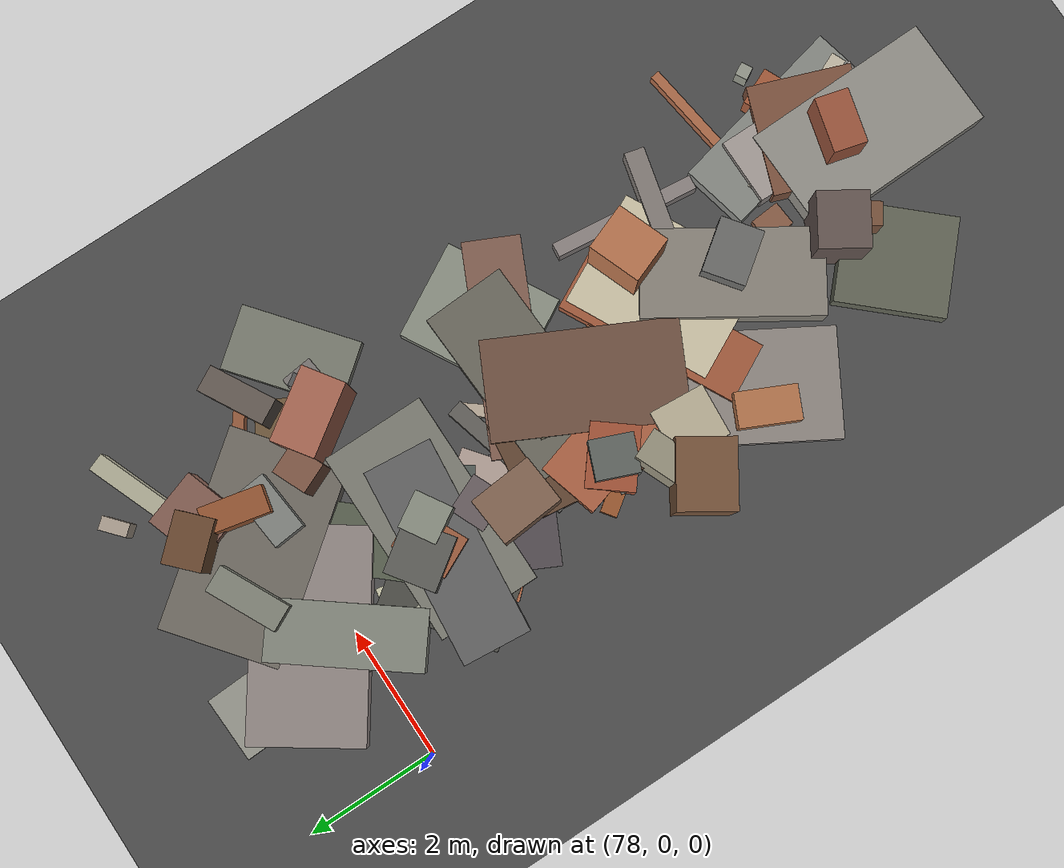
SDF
<sdf version="1.6">
 <world name="navitas_arena">
  <model name="ground_plane">
   <static>true</static>
   <link name="link">
    <collision name="collision">
     <geometry><plane><normal>0 0 1</normal><size>400 400</size></plane></geometry>
     <surface><friction><ode><mu>0.800</mu><mu2>0.800</mu2></ode></friction></surface>
    </collision>
    <visual name="visual">
     <cast_shadows>false</cast_shadows>
     <geometry><plane><normal>0 0 1</normal><size>400 400</size></plane></geometry>
     <material>
      <specular>0.04 0.04 0.04 1</specular>
      <script>
       <uri>file://media/materials/scripts/navitas_asphalt.material</uri>
       <name>Navitas/RealArenaAsphalt</name>
      </script>
     </material>
    </visual>
   </link>
  </model>
  <model name="deb_zor_56">
   <static>true</static>
   <pose>83.447 -8.535 0.000 0 0 0</pose>
   <link name="link">
    <collision name="col_0">
     <pose>-0.023 0.417 0.097 0.000 0.000 0.138</pose>
     <geometry><box><size>1.928 0.146 0.194</size></box></geometry>
    </collision>
    <visual name="vis_0">
     <pose>-0.023 0.417 0.097 0.000 0.000 0.138</pose>
     <geometry><box><size>1.928 0.146 0.194</size></box></geometry>
     <material>
      <ambient>0.63 0.39 0.26 1</ambient>
      <diffuse>0.68 0.42 0.29 1</diffuse>
      <specular>0.05 0.05 0.045 1</specular>
     </material>
    </visual>
    <collision name="col_1">
     <pose>0.239 -0.536 0.140 0.000 0.000 2.083</pose>
     <geometry><box><size>0.204 0.184 0.281</size></box></geometry>
    </collision>
    <visual name="vis_1">
     <pose>0.239 -0.536 0.140 0.000 0.000 2.083</pose>
     <geometry><box><size>0.204 0.184 0.281</size></box></geometry>
     <material>
      <ambient>0.55 0.56 0.51 1</ambient>
      <diffuse>0.59 0.60 0.55 1</diffuse>
      <specular>0.05 0.05 0.045 1</specular>
     </material>
    </visual>
    <collision name="col_2">
     <pose>-0.752 -0.512 0.131 0.000 0.000 1.798</pose>
     <geometry><box><size>2.816 1.041 0.261</size></box></geometry>
    </collision>
    <visual name="vis_2">
     <pose>-0.752 -0.512 0.131 0.000 0.000 1.798</pose>
     <geometry><box><size>2.816 1.041 0.261</size></box></geometry>
     <material>
      <ambient>0.49 0.50 0.48 1</ambient>
      <diffuse>0.53 0.54 0.52 1</diffuse>
      <specular>0.05 0.05 0.045 1</specular>
     </material>
    </visual>
    <collision name="col_3">
     <pose>-0.404 -0.680 0.183 0.000 0.000 0.432</pose>
     <geometry><box><size>0.807 0.586 0.366</size></box></geometry>
    </collision>
    <visual name="vis_3">
     <pose>-0.404 -0.680 0.183 0.000 0.000 0.432</pose>
     <geometry><box><size>0.807 0.586 0.366</size></box></geometry>
     <material>
      <ambient>0.60 0.33 0.22 1</ambient>
      <diffuse>0.65 0.36 0.23 1</diffuse>
      <specular>0.05 0.05 0.045 1</specular>
     </material>
    </visual>
    <collision name="col_4">
     <pose>-0.187 -0.570 0.068 0.000 0.000 1.763</pose>
     <geometry><box><size>0.271 0.315 0.135</size></box></geometry>
    </collision>
    <visual name="vis_4">
     <pose>-0.187 -0.570 0.068 0.000 0.000 1.763</pose>
     <geometry><box><size>0.271 0.315 0.135</size></box></geometry>
     <material>
      <ambient>0.46 0.36 0.28 1</ambient>
      <diffuse>0.49 0.38 0.30 1</diffuse>
      <specular>0.05 0.05 0.045 1</specular>
     </material>
    </visual>
   </link>
  </model>
  <model name="deb_zor_82">
   <static>true</static>
   <pose>79.392 -5.430 0.000 0 0 0</pose>
   <link name="link">
    <collision name="col_0">
     <pose>0.533 -0.974 0.094 0.000 0.000 1.044</pose>
     <geometry><box><size>2.958 1.632 0.187</size></box></geometry>
    </collision>
    <visual name="vis_0">
     <pose>0.533 -0.974 0.094 0.000 0.000 1.044</pose>
     <geometry><box><size>2.958 1.632 0.187</size></box></geometry>
     <material>
      <ambient>0.52 0.49 0.47 1</ambient>
      <diffuse>0.56 0.53 0.51 1</diffuse>
      <specular>0.05 0.05 0.045 1</specular>
     </material>
    </visual>
    <collision name="col_1">
     <pose>0.467 -0.253 0.119 0.000 0.000 1.325</pose>
     <geometry><box><size>0.332 0.458 0.238</size></box></geometry>
    </collision>
    <visual name="vis_1">
     <pose>0.467 -0.253 0.119 0.000 0.000 1.325</pose>
     <geometry><box><size>0.332 0.458 0.238</size></box></geometry>
     <material>
      <ambient>0.42 0.29 0.24 1</ambient>
      <diffuse>0.45 0.32 0.25 1</diffuse>
      <specular>0.05 0.05 0.045 1</specular>
     </material>
    </visual>
    <collision name="col_2">
     <pose>0.059 -1.146 0.235 0.000 0.000 2.701</pose>
     <geometry><box><size>0.521 0.916 0.470</size></box></geometry>
    </collision>
    <visual name="vis_2">
     <pose>0.059 -1.146 0.235 0.000 0.000 2.701</pose>
     <geometry><box><size>0.521 0.916 0.470</size></box></geometry>
     <material>
      <ambient>0.66 0.43 0.28 1</ambient>
      <diffuse>0.71 0.46 0.30 1</diffuse>
      <specular>0.05 0.05 0.045 1</specular>
     </material>
    </visual>
    <collision name="col_3">
     <pose>0.770 -0.200 0.067 0.000 0.000 1.558</pose>
     <geometry><box><size>1.090 0.287 0.134</size></box></geometry>
    </collision>
    <visual name="vis_3">
     <pose>0.770 -0.200 0.067 0.000 0.000 1.558</pose>
     <geometry><box><size>1.090 0.287 0.134</size></box></geometry>
     <material>
      <ambient>0.64 0.38 0.29 1</ambient>
      <diffuse>0.69 0.41 0.32 1</diffuse>
      <specular>0.05 0.05 0.045 1</specular>
     </material>
    </visual>
    <collision name="col_4">
     <pose>-0.262 0.188 0.550 0.000 0.000 2.567</pose>
     <geometry><box><size>1.025 0.848 1.101</size></box></geometry>
    </collision>
    <visual name="vis_4">
     <pose>-0.262 0.188 0.550 0.000 0.000 2.567</pose>
     <geometry><box><size>1.025 0.848 1.101</size></box></geometry>
     <material>
      <ambient>0.44 0.30 0.22 1</ambient>
      <diffuse>0.47 0.33 0.23 1</diffuse>
      <specular>0.05 0.05 0.045 1</specular>
     </material>
    </visual>
    <collision name="col_5">
     <pose>0.113 0.449 0.482 0.000 0.000 3.538</pose>
     <geometry><box><size>0.976 0.472 0.964</size></box></geometry>
    </collision>
    <visual name="vis_5">
     <pose>0.113 0.449 0.482 0.000 0.000 3.538</pose>
     <geometry><box><size>0.976 0.472 0.964</size></box></geometry>
     <material>
      <ambient>0.55 0.53 0.46 1</ambient>
      <diffuse>0.59 0.57 0.49 1</diffuse>
      <specular>0.05 0.05 0.045 1</specular>
     </material>
    </visual>
    <collision name="col_6">
     <pose>0.461 -0.100 0.207 0.000 0.000 1.495</pose>
     <geometry><box><size>0.845 0.802 0.414</size></box></geometry>
    </collision>
    <visual name="vis_6">
     <pose>0.461 -0.100 0.207 0.000 0.000 1.495</pose>
     <geometry><box><size>0.845 0.802 0.414</size></box></geometry>
     <material>
      <ambient>0.67 0.64 0.54 1</ambient>
      <diffuse>0.73 0.69 0.59 1</diffuse>
      <specular>0.05 0.05 0.045 1</specular>
     </material>
    </visual>
   </link>
  </model>
  <model name="deb_zor_91">
   <static>true</static>
   <pose>82.431 -0.964 0.000 0 0 0</pose>
   <link name="link">
    <collision name="col_0">
     <pose>0.379 -0.228 0.568 0.000 0.000 2.179</pose>
     <geometry><box><size>1.117 0.659 1.137</size></box></geometry>
    </collision>
    <visual name="vis_0">
     <pose>0.379 -0.228 0.568 0.000 0.000 2.179</pose>
     <geometry><box><size>1.117 0.659 1.137</size></box></geometry>
     <material>
      <ambient>0.62 0.38 0.31 1</ambient>
      <diffuse>0.67 0.41 0.33 1</diffuse>
      <specular>0.05 0.05 0.045 1</specular>
     </material>
    </visual>
    <collision name="col_1">
     <pose>-0.432 -0.044 0.133 0.000 0.000 1.705</pose>
     <geometry><box><size>1.074 0.168 0.266</size></box></geometry>
    </collision>
    <visual name="vis_1">
     <pose>-0.432 -0.044 0.133 0.000 0.000 1.705</pose>
     <geometry><box><size>1.074 0.168 0.266</size></box></geometry>
     <material>
      <ambient>0.57 0.29 0.22 1</ambient>
      <diffuse>0.61 0.32 0.24 1</diffuse>
      <specular>0.05 0.05 0.045 1</specular>
     </material>
    </visual>
    <collision name="col_2">
     <pose>0.084 0.310 0.085 0.000 0.000 1.967</pose>
     <geometry><box><size>0.391 0.237 0.170</size></box></geometry>
    </collision>
    <visual name="vis_2">
     <pose>0.084 0.310 0.085 0.000 0.000 1.967</pose>
     <geometry><box><size>0.391 0.237 0.170</size></box></geometry>
     <material>
      <ambient>0.33 0.30 0.26 1</ambient>
      <diffuse>0.35 0.32 0.28 1</diffuse>
      <specular>0.05 0.05 0.045 1</specular>
     </material>
    </visual>
    <collision name="col_3">
     <pose>-0.378 0.739 0.131 0.000 0.000 2.644</pose>
     <geometry><box><size>2.926 0.805 0.262</size></box></geometry>
    </collision>
    <visual name="vis_3">
     <pose>-0.378 0.739 0.131 0.000 0.000 2.644</pose>
     <geometry><box><size>2.926 0.805 0.262</size></box></geometry>
     <material>
      <ambient>0.41 0.32 0.22 1</ambient>
      <diffuse>0.44 0.35 0.24 1</diffuse>
      <specular>0.05 0.05 0.045 1</specular>
     </material>
    </visual>
   </link>
  </model>
  <model name="deb_zor_113">
   <static>true</static>
   <pose>80.293 -4.327 0.000 0 0 0</pose>
   <link name="link">
    <collision name="col_0">
     <pose>0.253 0.425 0.153 0.000 0.000 1.439</pose>
     <geometry><box><size>1.755 1.512 0.306</size></box></geometry>
    </collision>
    <visual name="vis_0">
     <pose>0.253 0.425 0.153 0.000 0.000 1.439</pose>
     <geometry><box><size>1.755 1.512 0.306</size></box></geometry>
     <material>
      <ambient>0.36 0.26 0.18 1</ambient>
      <diffuse>0.39 0.28 0.20 1</diffuse>
      <specular>0.05 0.05 0.045 1</specular>
     </material>
    </visual>
    <collision name="col_1">
     <pose>-0.177 -0.508 0.098 0.000 0.000 2.198</pose>
     <geometry><box><size>2.357 0.248 0.196</size></box></geometry>
    </collision>
    <visual name="vis_1">
     <pose>-0.177 -0.508 0.098 0.000 0.000 2.198</pose>
     <geometry><box><size>2.357 0.248 0.196</size></box></geometry>
     <material>
      <ambient>0.57 0.32 0.17 1</ambient>
      <diffuse>0.61 0.35 0.19 1</diffuse>
      <specular>0.05 0.05 0.045 1</specular>
     </material>
    </visual>
    <collision name="col_2">
     <pose>0.418 0.032 0.072 0.000 0.000 0.740</pose>
     <geometry><box><size>1.840 0.311 0.143</size></box></geometry>
    </collision>
    <visual name="vis_2">
     <pose>0.418 0.032 0.072 0.000 0.000 0.740</pose>
     <geometry><box><size>1.840 0.311 0.143</size></box></geometry>
     <material>
      <ambient>0.53 0.50 0.48 1</ambient>
      <diffuse>0.57 0.54 0.52 1</diffuse>
      <specular>0.05 0.05 0.045 1</specular>
     </material>
    </visual>
    <collision name="col_3">
     <pose>0.447 -0.362 0.183 0.000 0.000 2.781</pose>
     <geometry><box><size>2.268 0.126 0.365</size></box></geometry>
    </collision>
    <visual name="vis_3">
     <pose>0.447 -0.362 0.183 0.000 0.000 2.781</pose>
     <geometry><box><size>2.268 0.126 0.365</size></box></geometry>
     <material>
      <ambient>0.43 0.30 0.22 1</ambient>
      <diffuse>0.46 0.32 0.24 1</diffuse>
      <specular>0.05 0.05 0.045 1</specular>
     </material>
    </visual>
    <collision name="col_4">
     <pose>0.016 -0.260 0.180 0.000 0.000 1.855</pose>
     <geometry><box><size>2.114 0.938 0.361</size></box></geometry>
    </collision>
    <visual name="vis_4">
     <pose>0.016 -0.260 0.180 0.000 0.000 1.855</pose>
     <geometry><box><size>2.114 0.938 0.361</size></box></geometry>
     <material>
      <ambient>0.63 0.36 0.25 1</ambient>
      <diffuse>0.68 0.39 0.27 1</diffuse>
      <specular>0.05 0.05 0.045 1</specular>
     </material>
    </visual>
   </link>
  </model>
  <model name="deb_zor_141">
   <static>true</static>
   <pose>80.173 -1.616 0.000 0 0 0</pose>
   <link name="link">
    <collision name="col_0">
     <pose>0.199 0.227 0.382 0.000 0.000 2.188</pose>
     <geometry><box><size>0.811 0.773 0.764</size></box></geometry>
    </collision>
    <visual name="vis_0">
     <pose>0.199 0.227 0.382 0.000 0.000 2.188</pose>
     <geometry><box><size>0.811 0.773 0.764</size></box></geometry>
     <material>
      <ambient>0.35 0.34 0.32 1</ambient>
      <diffuse>0.37 0.37 0.35 1</diffuse>
      <specular>0.05 0.05 0.045 1</specular>
     </material>
    </visual>
    <collision name="col_1">
     <pose>-0.100 -0.022 0.082 0.000 0.000 1.425</pose>
     <geometry><box><size>2.195 0.233 0.164</size></box></geometry>
    </collision>
    <visual name="vis_1">
     <pose>-0.100 -0.022 0.082 0.000 0.000 1.425</pose>
     <geometry><box><size>2.195 0.233 0.164</size></box></geometry>
     <material>
      <ambient>0.73 0.72 0.61 1</ambient>
      <diffuse>0.78 0.77 0.66 1</diffuse>
      <specular>0.05 0.05 0.045 1</specular>
     </material>
    </visual>
    <collision name="col_2">
     <pose>0.587 -0.119 0.405 0.000 0.000 2.125</pose>
     <geometry><box><size>0.565 0.575 0.809</size></box></geometry>
    </collision>
    <visual name="vis_2">
     <pose>0.587 -0.119 0.405 0.000 0.000 2.125</pose>
     <geometry><box><size>0.565 0.575 0.809</size></box></geometry>
     <material>
      <ambient>0.50 0.52 0.47 1</ambient>
      <diffuse>0.54 0.56 0.51 1</diffuse>
      <specular>0.05 0.05 0.045 1</specular>
     </material>
    </visual>
    <collision name="col_3">
     <pose>0.578 -0.151 0.173 0.000 0.000 3.143</pose>
     <geometry><box><size>3.017 1.575 0.346</size></box></geometry>
    </collision>
    <visual name="vis_3">
     <pose>0.578 -0.151 0.173 0.000 0.000 3.143</pose>
     <geometry><box><size>3.017 1.575 0.346</size></box></geometry>
     <material>
      <ambient>0.46 0.45 0.42 1</ambient>
      <diffuse>0.49 0.49 0.45 1</diffuse>
      <specular>0.05 0.05 0.045 1</specular>
     </material>
    </visual>
    <collision name="col_4">
     <pose>-0.174 0.026 0.118 0.000 0.000 1.949</pose>
     <geometry><box><size>2.147 0.168 0.235</size></box></geometry>
    </collision>
    <visual name="vis_4">
     <pose>-0.174 0.026 0.118 0.000 0.000 1.949</pose>
     <geometry><box><size>2.147 0.168 0.235</size></box></geometry>
     <material>
      <ambient>0.59 0.59 0.53 1</ambient>
      <diffuse>0.64 0.64 0.57 1</diffuse>
      <specular>0.05 0.05 0.045 1</specular>
     </material>
    </visual>
    <collision name="col_5">
     <pose>-0.091 -0.565 0.086 0.000 0.000 2.611</pose>
     <geometry><box><size>1.648 0.212 0.173</size></box></geometry>
    </collision>
    <visual name="vis_5">
     <pose>-0.091 -0.565 0.086 0.000 0.000 2.611</pose>
     <geometry><box><size>1.648 0.212 0.173</size></box></geometry>
     <material>
      <ambient>0.70 0.68 0.58 1</ambient>
      <diffuse>0.75 0.73 0.63 1</diffuse>
      <specular>0.05 0.05 0.045 1</specular>
     </material>
    </visual>
   </link>
  </model>
  <model name="deb_zor_181">
   <static>true</static>
   <pose>82.778 -0.841 0.000 0 0 0</pose>
   <link name="link">
    <collision name="col_0">
     <pose>0.541 -0.449 0.146 0.000 0.000 0.552</pose>
     <geometry><box><size>0.423 0.204 0.293</size></box></geometry>
    </collision>
    <visual name="vis_0">
     <pose>0.541 -0.449 0.146 0.000 0.000 0.552</pose>
     <geometry><box><size>0.423 0.204 0.293</size></box></geometry>
     <material>
      <ambient>0.31 0.31 0.31 1</ambient>
      <diffuse>0.33 0.33 0.33 1</diffuse>
      <specular>0.05 0.05 0.045 1</specular>
     </material>
    </visual>
    <collision name="col_1">
     <pose>-0.534 0.179 0.538 0.000 0.000 1.981</pose>
     <geometry><box><size>0.463 0.525 1.077</size></box></geometry>
    </collision>
    <visual name="vis_1">
     <pose>-0.534 0.179 0.538 0.000 0.000 1.981</pose>
     <geometry><box><size>0.463 0.525 1.077</size></box></geometry>
     <material>
      <ambient>0.47 0.32 0.26 1</ambient>
      <diffuse>0.51 0.35 0.28 1</diffuse>
      <specular>0.05 0.05 0.045 1</specular>
     </material>
    </visual>
    <collision name="col_2">
     <pose>-0.400 0.566 0.063 0.000 0.000 0.287</pose>
     <geometry><box><size>1.055 0.207 0.126</size></box></geometry>
    </collision>
    <visual name="vis_2">
     <pose>-0.400 0.566 0.063 0.000 0.000 0.287</pose>
     <geometry><box><size>1.055 0.207 0.126</size></box></geometry>
     <material>
      <ambient>0.39 0.38 0.37 1</ambient>
      <diffuse>0.42 0.41 0.39 1</diffuse>
      <specular>0.05 0.05 0.045 1</specular>
     </material>
    </visual>
    <collision name="col_3">
     <pose>0.680 -0.486 0.127 0.000 0.000 1.689</pose>
     <geometry><box><size>0.485 0.251 0.255</size></box></geometry>
    </collision>
    <visual name="vis_3">
     <pose>0.680 -0.486 0.127 0.000 0.000 1.689</pose>
     <geometry><box><size>0.485 0.251 0.255</size></box></geometry>
     <material>
      <ambient>0.45 0.42 0.42 1</ambient>
      <diffuse>0.48 0.46 0.45 1</diffuse>
      <specular>0.05 0.05 0.045 1</specular>
     </material>
    </visual>
    <collision name="col_4">
     <pose>0.823 0.365 0.426 0.000 0.000 0.506</pose>
     <geometry><box><size>1.025 0.397 0.852</size></box></geometry>
    </collision>
    <visual name="vis_4">
     <pose>0.823 0.365 0.426 0.000 0.000 0.506</pose>
     <geometry><box><size>1.025 0.397 0.852</size></box></geometry>
     <material>
      <ambient>0.37 0.34 0.31 1</ambient>
      <diffuse>0.40 0.36 0.33 1</diffuse>
      <specular>0.05 0.05 0.045 1</specular>
     </material>
    </visual>
    <collision name="col_5">
     <pose>-0.727 0.878 0.279 0.000 0.000 0.101</pose>
     <geometry><box><size>0.922 0.488 0.558</size></box></geometry>
    </collision>
    <visual name="vis_5">
     <pose>-0.727 0.878 0.279 0.000 0.000 0.101</pose>
     <geometry><box><size>0.922 0.488 0.558</size></box></geometry>
     <material>
      <ambient>0.47 0.48 0.46 1</ambient>
      <diffuse>0.51 0.52 0.50 1</diffuse>
      <specular>0.05 0.05 0.045 1</specular>
     </material>
    </visual>
    <collision name="col_6">
     <pose>1.020 -0.519 0.105 0.000 0.000 0.679</pose>
     <geometry><box><size>1.802 0.974 0.209</size></box></geometry>
    </collision>
    <visual name="vis_6">
     <pose>1.020 -0.519 0.105 0.000 0.000 0.679</pose>
     <geometry><box><size>1.802 0.974 0.209</size></box></geometry>
     <material>
      <ambient>0.45 0.45 0.41 1</ambient>
      <diffuse>0.48 0.49 0.44 1</diffuse>
      <specular>0.05 0.05 0.045 1</specular>
     </material>
    </visual>
   </link>
  </model>
  <model name="deb_zor_184">
   <static>true</static>
   <pose>80.121 -2.291 0.000 0 0 0</pose>
   <link name="link">
    <collision name="col_0">
     <pose>0.754 -0.877 0.101 0.000 0.000 0.264</pose>
     <geometry><box><size>2.109 0.256 0.202</size></box></geometry>
    </collision>
    <visual name="vis_0">
     <pose>0.754 -0.877 0.101 0.000 0.000 0.264</pose>
     <geometry><box><size>2.109 0.256 0.202</size></box></geometry>
     <material>
      <ambient>0.36 0.36 0.33 1</ambient>
      <diffuse>0.39 0.38 0.36 1</diffuse>
      <specular>0.05 0.05 0.045 1</specular>
     </material>
    </visual>
    <collision name="col_1">
     <pose>0.828 -0.142 0.111 0.000 0.000 2.560</pose>
     <geometry><box><size>0.443 0.336 0.223</size></box></geometry>
    </collision>
    <visual name="vis_1">
     <pose>0.828 -0.142 0.111 0.000 0.000 2.560</pose>
     <geometry><box><size>0.443 0.336 0.223</size></box></geometry>
     <material>
      <ambient>0.31 0.34 0.32 1</ambient>
      <diffuse>0.33 0.36 0.34 1</diffuse>
      <specular>0.05 0.05 0.045 1</specular>
     </material>
    </visual>
    <collision name="col_2">
     <pose>0.125 -0.597 0.586 0.000 0.000 1.660</pose>
     <geometry><box><size>0.962 0.733 1.173</size></box></geometry>
    </collision>
    <visual name="vis_2">
     <pose>0.125 -0.597 0.586 0.000 0.000 1.660</pose>
     <geometry><box><size>0.962 0.733 1.173</size></box></geometry>
     <material>
      <ambient>0.48 0.37 0.29 1</ambient>
      <diffuse>0.52 0.40 0.32 1</diffuse>
      <specular>0.05 0.05 0.045 1</specular>
     </material>
    </visual>
    <collision name="col_3">
     <pose>-0.813 0.179 0.087 0.000 0.000 2.309</pose>
     <geometry><box><size>0.227 0.384 0.175</size></box></geometry>
    </collision>
    <visual name="vis_3">
     <pose>-0.813 0.179 0.087 0.000 0.000 2.309</pose>
     <geometry><box><size>0.227 0.384 0.175</size></box></geometry>
     <material>
      <ambient>0.64 0.38 0.26 1</ambient>
      <diffuse>0.69 0.41 0.28 1</diffuse>
      <specular>0.05 0.05 0.045 1</specular>
     </material>
    </visual>
    <collision name="col_4">
     <pose>0.118 -0.320 0.172 0.000 0.000 2.222</pose>
     <geometry><box><size>0.194 0.235 0.344</size></box></geometry>
    </collision>
    <visual name="vis_4">
     <pose>0.118 -0.320 0.172 0.000 0.000 2.222</pose>
     <geometry><box><size>0.194 0.235 0.344</size></box></geometry>
     <material>
      <ambient>0.47 0.50 0.44 1</ambient>
      <diffuse>0.51 0.54 0.48 1</diffuse>
      <specular>0.05 0.05 0.045 1</specular>
     </material>
    </visual>
   </link>
  </model>
  <model name="deb_zor_195">
   <static>true</static>
   <pose>80.514 -1.969 0.000 0 0 0</pose>
   <link name="link">
    <collision name="col_0">
     <pose>-0.723 0.469 0.092 0.000 0.000 3.782</pose>
     <geometry><box><size>1.821 1.294 0.184</size></box></geometry>
    </collision>
    <visual name="vis_0">
     <pose>-0.723 0.469 0.092 0.000 0.000 3.782</pose>
     <geometry><box><size>1.821 1.294 0.184</size></box></geometry>
     <material>
      <ambient>0.27 0.27 0.26 1</ambient>
      <diffuse>0.30 0.30 0.28 1</diffuse>
      <specular>0.05 0.05 0.045 1</specular>
     </material>
    </visual>
    <collision name="col_1">
     <pose>-0.282 0.267 0.191 0.000 0.000 3.049</pose>
     <geometry><box><size>3.025 1.041 0.382</size></box></geometry>
    </collision>
    <visual name="vis_1">
     <pose>-0.282 0.267 0.191 0.000 0.000 3.049</pose>
     <geometry><box><size>3.025 1.041 0.382</size></box></geometry>
     <material>
      <ambient>0.36 0.36 0.36 1</ambient>
      <diffuse>0.39 0.39 0.39 1</diffuse>
      <specular>0.05 0.05 0.045 1</specular>
     </material>
    </visual>
    <collision name="col_2">
     <pose>0.042 -0.472 0.202 0.000 0.000 3.551</pose>
     <geometry><box><size>0.554 0.605 0.404</size></box></geometry>
    </collision>
    <visual name="vis_2">
     <pose>0.042 -0.472 0.202 0.000 0.000 3.551</pose>
     <geometry><box><size>0.554 0.605 0.404</size></box></geometry>
     <material>
      <ambient>0.38 0.35 0.36 1</ambient>
      <diffuse>0.41 0.37 0.38 1</diffuse>
      <specular>0.05 0.05 0.045 1</specular>
     </material>
    </visual>
    <collision name="col_3">
     <pose>-0.198 -0.573 0.083 0.000 0.000 2.683</pose>
     <geometry><box><size>1.679 1.731 0.166</size></box></geometry>
    </collision>
    <visual name="vis_3">
     <pose>-0.198 -0.573 0.083 0.000 0.000 2.683</pose>
     <geometry><box><size>1.679 1.731 0.166</size></box></geometry>
     <material>
      <ambient>0.31 0.28 0.29 1</ambient>
      <diffuse>0.33 0.30 0.32 1</diffuse>
      <specular>0.05 0.05 0.045 1</specular>
     </material>
    </visual>
    <collision name="col_4">
     <pose>0.138 0.755 0.102 0.000 0.000 3.990</pose>
     <geometry><box><size>2.304 0.988 0.205</size></box></geometry>
    </collision>
    <visual name="vis_4">
     <pose>0.138 0.755 0.102 0.000 0.000 3.990</pose>
     <geometry><box><size>2.304 0.988 0.205</size></box></geometry>
     <material>
      <ambient>0.32 0.35 0.29 1</ambient>
      <diffuse>0.35 0.38 0.31 1</diffuse>
      <specular>0.05 0.05 0.045 1</specular>
     </material>
    </visual>
    <collision name="col_5">
     <pose>-0.059 0.390 0.278 0.000 0.000 2.021</pose>
     <geometry><box><size>0.633 0.864 0.555</size></box></geometry>
    </collision>
    <visual name="vis_5">
     <pose>-0.059 0.390 0.278 0.000 0.000 2.021</pose>
     <geometry><box><size>0.633 0.864 0.555</size></box></geometry>
     <material>
      <ambient>0.57 0.35 0.23 1</ambient>
      <diffuse>0.62 0.37 0.25 1</diffuse>
      <specular>0.05 0.05 0.045 1</specular>
     </material>
    </visual>
    <collision name="col_6">
     <pose>0.064 -0.302 0.093 0.000 0.000 2.238</pose>
     <geometry><box><size>1.603 0.725 0.185</size></box></geometry>
    </collision>
    <visual name="vis_6">
     <pose>0.064 -0.302 0.093 0.000 0.000 2.238</pose>
     <geometry><box><size>1.603 0.725 0.185</size></box></geometry>
     <material>
      <ambient>0.64 0.58 0.54 1</ambient>
      <diffuse>0.70 0.63 0.59 1</diffuse>
      <specular>0.05 0.05 0.045 1</specular>
     </material>
    </visual>
   </link>
  </model>
  <model name="deb_zor_221">
   <static>true</static>
   <pose>82.222 1.162 0.000 0 0 0</pose>
   <link name="link">
    <collision name="col_0">
     <pose>-1.033 -0.238 0.295 0.000 0.000 3.604</pose>
     <geometry><box><size>1.115 0.408 0.590</size></box></geometry>
    </collision>
    <visual name="vis_0">
     <pose>-1.033 -0.238 0.295 0.000 0.000 3.604</pose>
     <geometry><box><size>1.115 0.408 0.590</size></box></geometry>
     <material>
      <ambient>0.47 0.48 0.43 1</ambient>
      <diffuse>0.51 0.52 0.47 1</diffuse>
      <specular>0.05 0.05 0.045 1</specular>
     </material>
    </visual>
    <collision name="col_1">
     <pose>0.329 -0.202 0.247 0.000 0.000 3.467</pose>
     <geometry><box><size>0.920 0.869 0.494</size></box></geometry>
    </collision>
    <visual name="vis_1">
     <pose>0.329 -0.202 0.247 0.000 0.000 3.467</pose>
     <geometry><box><size>0.920 0.869 0.494</size></box></geometry>
     <material>
      <ambient>0.48 0.34 0.29 1</ambient>
      <diffuse>0.52 0.37 0.32 1</diffuse>
      <specular>0.05 0.05 0.045 1</specular>
     </material>
    </visual>
    <collision name="col_2">
     <pose>0.864 0.831 0.164 0.000 0.000 3.857</pose>
     <geometry><box><size>0.416 0.205 0.328</size></box></geometry>
    </collision>
    <visual name="vis_2">
     <pose>0.864 0.831 0.164 0.000 0.000 3.857</pose>
     <geometry><box><size>0.416 0.205 0.328</size></box></geometry>
     <material>
      <ambient>0.63 0.58 0.53 1</ambient>
      <diffuse>0.68 0.63 0.57 1</diffuse>
      <specular>0.05 0.05 0.045 1</specular>
     </material>
    </visual>
    <collision name="col_3">
     <pose>0.029 -0.031 0.459 0.000 0.000 2.325</pose>
     <geometry><box><size>0.755 0.568 0.917</size></box></geometry>
    </collision>
    <visual name="vis_3">
     <pose>0.029 -0.031 0.459 0.000 0.000 2.325</pose>
     <geometry><box><size>0.755 0.568 0.917</size></box></geometry>
     <material>
      <ambient>0.39 0.27 0.17 1</ambient>
      <diffuse>0.42 0.29 0.19 1</diffuse>
      <specular>0.05 0.05 0.045 1</specular>
     </material>
    </visual>
   </link>
  </model>
  <model name="deb_zor_231">
   <static>true</static>
   <pose>82.380 1.127 0.000 0 0 0</pose>
   <link name="link">
    <collision name="col_0">
     <pose>0.257 -0.792 0.110 0.000 0.000 2.508</pose>
     <geometry><box><size>2.395 0.165 0.220</size></box></geometry>
    </collision>
    <visual name="vis_0">
     <pose>0.257 -0.792 0.110 0.000 0.000 2.508</pose>
     <geometry><box><size>2.395 0.165 0.220</size></box></geometry>
     <material>
      <ambient>0.55 0.34 0.22 1</ambient>
      <diffuse>0.59 0.36 0.24 1</diffuse>
      <specular>0.05 0.05 0.045 1</specular>
     </material>
    </visual>
    <collision name="col_1">
     <pose>-0.604 -0.621 0.166 0.000 0.000 2.239</pose>
     <geometry><box><size>2.990 1.780 0.333</size></box></geometry>
    </collision>
    <visual name="vis_1">
     <pose>-0.604 -0.621 0.166 0.000 0.000 2.239</pose>
     <geometry><box><size>2.990 1.780 0.333</size></box></geometry>
     <material>
      <ambient>0.41 0.39 0.36 1</ambient>
      <diffuse>0.44 0.42 0.39 1</diffuse>
      <specular>0.05 0.05 0.045 1</specular>
     </material>
    </visual>
    <collision name="col_2">
     <pose>-0.090 -0.720 0.388 0.000 0.000 1.356</pose>
     <geometry><box><size>0.935 0.404 0.776</size></box></geometry>
    </collision>
    <visual name="vis_2">
     <pose>-0.090 -0.720 0.388 0.000 0.000 1.356</pose>
     <geometry><box><size>0.935 0.404 0.776</size></box></geometry>
     <material>
      <ambient>0.55 0.32 0.19 1</ambient>
      <diffuse>0.59 0.34 0.20 1</diffuse>
      <specular>0.05 0.05 0.045 1</specular>
     </material>
    </visual>
    <collision name="col_3">
     <pose>0.711 0.249 0.164 0.000 0.000 3.518</pose>
     <geometry><box><size>1.974 0.273 0.329</size></box></geometry>
    </collision>
    <visual name="vis_3">
     <pose>0.711 0.249 0.164 0.000 0.000 3.518</pose>
     <geometry><box><size>1.974 0.273 0.329</size></box></geometry>
     <material>
      <ambient>0.64 0.63 0.55 1</ambient>
      <diffuse>0.69 0.68 0.59 1</diffuse>
      <specular>0.05 0.05 0.045 1</specular>
     </material>
    </visual>
   </link>
  </model>
  <model name="deb_zor_239">
   <static>true</static>
   <pose>81.893 -5.885 0.000 0 0 0</pose>
   <link name="link">
    <collision name="col_0">
     <pose>-0.649 -0.096 0.131 0.000 0.000 3.624</pose>
     <geometry><box><size>2.809 0.919 0.261</size></box></geometry>
    </collision>
    <visual name="vis_0">
     <pose>-0.649 -0.096 0.131 0.000 0.000 3.624</pose>
     <geometry><box><size>2.809 0.919 0.261</size></box></geometry>
     <material>
      <ambient>0.59 0.34 0.22 1</ambient>
      <diffuse>0.64 0.36 0.24 1</diffuse>
      <specular>0.05 0.05 0.045 1</specular>
     </material>
    </visual>
    <collision name="col_1">
     <pose>0.750 -0.960 0.166 0.000 0.000 2.902</pose>
     <geometry><box><size>1.917 0.303 0.333</size></box></geometry>
    </collision>
    <visual name="vis_1">
     <pose>0.750 -0.960 0.166 0.000 0.000 2.902</pose>
     <geometry><box><size>1.917 0.303 0.333</size></box></geometry>
     <material>
      <ambient>0.48 0.45 0.44 1</ambient>
      <diffuse>0.52 0.49 0.47 1</diffuse>
      <specular>0.05 0.05 0.045 1</specular>
     </material>
    </visual>
    <collision name="col_2">
     <pose>0.968 -0.554 0.126 0.000 0.000 1.461</pose>
     <geometry><box><size>2.215 0.213 0.253</size></box></geometry>
    </collision>
    <visual name="vis_2">
     <pose>0.968 -0.554 0.126 0.000 0.000 1.461</pose>
     <geometry><box><size>2.215 0.213 0.253</size></box></geometry>
     <material>
      <ambient>0.51 0.48 0.47 1</ambient>
      <diffuse>0.55 0.52 0.51 1</diffuse>
      <specular>0.05 0.05 0.045 1</specular>
     </material>
    </visual>
    <collision name="col_3">
     <pose>0.441 -0.213 0.619 0.000 0.000 1.936</pose>
     <geometry><box><size>0.715 0.811 1.239</size></box></geometry>
    </collision>
    <visual name="vis_3">
     <pose>0.441 -0.213 0.619 0.000 0.000 1.936</pose>
     <geometry><box><size>0.715 0.811 1.239</size></box></geometry>
     <material>
      <ambient>0.68 0.43 0.29 1</ambient>
      <diffuse>0.73 0.46 0.31 1</diffuse>
      <specular>0.05 0.05 0.045 1</specular>
     </material>
    </visual>
    <collision name="col_4">
     <pose>0.170 0.307 0.075 0.000 0.000 2.306</pose>
     <geometry><box><size>2.099 0.279 0.150</size></box></geometry>
    </collision>
    <visual name="vis_4">
     <pose>0.170 0.307 0.075 0.000 0.000 2.306</pose>
     <geometry><box><size>2.099 0.279 0.150</size></box></geometry>
     <material>
      <ambient>0.68 0.42 0.29 1</ambient>
      <diffuse>0.73 0.46 0.31 1</diffuse>
      <specular>0.05 0.05 0.045 1</specular>
     </material>
    </visual>
   </link>
  </model>
  <model name="deb_zor_245">
   <static>true</static>
   <pose>81.643 -3.615 0.000 0 0 0</pose>
   <link name="link">
    <collision name="col_0">
     <pose>-0.136 -0.314 0.185 0.000 0.000 2.942</pose>
     <geometry><box><size>1.467 0.251 0.371</size></box></geometry>
    </collision>
    <visual name="vis_0">
     <pose>-0.136 -0.314 0.185 0.000 0.000 2.942</pose>
     <geometry><box><size>1.467 0.251 0.371</size></box></geometry>
     <material>
      <ambient>0.34 0.33 0.26 1</ambient>
      <diffuse>0.37 0.35 0.28 1</diffuse>
      <specular>0.05 0.05 0.045 1</specular>
     </material>
    </visual>
    <collision name="col_1">
     <pose>0.112 -0.324 0.175 0.000 0.000 3.190</pose>
     <geometry><box><size>2.809 1.273 0.350</size></box></geometry>
    </collision>
    <visual name="vis_1">
     <pose>0.112 -0.324 0.175 0.000 0.000 3.190</pose>
     <geometry><box><size>2.809 1.273 0.350</size></box></geometry>
     <material>
      <ambient>0.39 0.38 0.35 1</ambient>
      <diffuse>0.42 0.41 0.37 1</diffuse>
      <specular>0.05 0.05 0.045 1</specular>
     </material>
    </visual>
    <collision name="col_2">
     <pose>0.565 -0.363 0.147 0.000 0.000 2.702</pose>
     <geometry><box><size>3.159 0.859 0.294</size></box></geometry>
    </collision>
    <visual name="vis_2">
     <pose>0.565 -0.363 0.147 0.000 0.000 2.702</pose>
     <geometry><box><size>3.159 0.859 0.294</size></box></geometry>
     <material>
      <ambient>0.48 0.36 0.29 1</ambient>
      <diffuse>0.52 0.38 0.32 1</diffuse>
      <specular>0.05 0.05 0.045 1</specular>
     </material>
    </visual>
    <collision name="col_3">
     <pose>-0.460 -1.031 0.192 0.000 0.000 4.251</pose>
     <geometry><box><size>2.858 1.478 0.383</size></box></geometry>
    </collision>
    <visual name="vis_3">
     <pose>-0.460 -1.031 0.192 0.000 0.000 4.251</pose>
     <geometry><box><size>2.858 1.478 0.383</size></box></geometry>
     <material>
      <ambient>0.41 0.30 0.24 1</ambient>
      <diffuse>0.44 0.32 0.26 1</diffuse>
      <specular>0.05 0.05 0.045 1</specular>
     </material>
    </visual>
    <collision name="col_4">
     <pose>1.128 -0.286 0.127 0.000 0.000 3.654</pose>
     <geometry><box><size>1.789 1.494 0.255</size></box></geometry>
    </collision>
    <visual name="vis_4">
     <pose>1.128 -0.286 0.127 0.000 0.000 3.654</pose>
     <geometry><box><size>1.789 1.494 0.255</size></box></geometry>
     <material>
      <ambient>0.51 0.53 0.48 1</ambient>
      <diffuse>0.55 0.57 0.52 1</diffuse>
      <specular>0.05 0.05 0.045 1</specular>
     </material>
    </visual>
    <collision name="col_5">
     <pose>1.298 0.136 0.129 0.000 0.000 2.170</pose>
     <geometry><box><size>0.330 0.282 0.259</size></box></geometry>
    </collision>
    <visual name="vis_5">
     <pose>1.298 0.136 0.129 0.000 0.000 2.170</pose>
     <geometry><box><size>0.330 0.282 0.259</size></box></geometry>
     <material>
      <ambient>0.34 0.31 0.29 1</ambient>
      <diffuse>0.37 0.34 0.31 1</diffuse>
      <specular>0.05 0.05 0.045 1</specular>
     </material>
    </visual>
    <collision name="col_6">
     <pose>-0.212 0.136 0.067 0.000 0.000 4.050</pose>
     <geometry><box><size>1.267 0.179 0.134</size></box></geometry>
    </collision>
    <visual name="vis_6">
     <pose>-0.212 0.136 0.067 0.000 0.000 4.050</pose>
     <geometry><box><size>1.267 0.179 0.134</size></box></geometry>
     <material>
      <ambient>0.67 0.62 0.56 1</ambient>
      <diffuse>0.73 0.67 0.60 1</diffuse>
      <specular>0.05 0.05 0.045 1</specular>
     </material>
    </visual>
   </link>
  </model>
  <model name="deb_zor_254">
   <static>true</static>
   <pose>82.070 -9.890 0.000 0 0 0</pose>
   <link name="link">
    <collision name="col_0">
     <pose>0.556 0.617 0.139 0.000 0.000 1.992</pose>
     <geometry><box><size>2.337 0.224 0.279</size></box></geometry>
    </collision>
    <visual name="vis_0">
     <pose>0.556 0.617 0.139 0.000 0.000 1.992</pose>
     <geometry><box><size>2.337 0.224 0.279</size></box></geometry>
     <material>
      <ambient>0.71 0.68 0.61 1</ambient>
      <diffuse>0.77 0.74 0.66 1</diffuse>
      <specular>0.05 0.05 0.045 1</specular>
     </material>
    </visual>
    <collision name="col_1">
     <pose>-0.076 -0.173 0.190 0.000 0.000 1.595</pose>
     <geometry><box><size>2.900 1.649 0.380</size></box></geometry>
    </collision>
    <visual name="vis_1">
     <pose>-0.076 -0.173 0.190 0.000 0.000 1.595</pose>
     <geometry><box><size>2.900 1.649 0.380</size></box></geometry>
     <material>
      <ambient>0.54 0.53 0.50 1</ambient>
      <diffuse>0.58 0.57 0.54 1</diffuse>
      <specular>0.05 0.05 0.045 1</specular>
     </material>
    </visual>
    <collision name="col_2">
     <pose>0.379 0.595 0.179 0.000 0.000 1.572</pose>
     <geometry><box><size>2.217 1.002 0.358</size></box></geometry>
    </collision>
    <visual name="vis_2">
     <pose>0.379 0.595 0.179 0.000 0.000 1.572</pose>
     <geometry><box><size>2.217 1.002 0.358</size></box></geometry>
     <material>
      <ambient>0.60 0.58 0.56 1</ambient>
      <diffuse>0.65 0.62 0.60 1</diffuse>
      <specular>0.05 0.05 0.045 1</specular>
     </material>
    </visual>
    <collision name="col_3">
     <pose>0.242 -0.025 0.129 0.000 0.000 2.993</pose>
     <geometry><box><size>0.449 0.246 0.258</size></box></geometry>
    </collision>
    <visual name="vis_3">
     <pose>0.242 -0.025 0.129 0.000 0.000 2.993</pose>
     <geometry><box><size>0.449 0.246 0.258</size></box></geometry>
     <material>
      <ambient>0.60 0.58 0.56 1</ambient>
      <diffuse>0.65 0.63 0.60 1</diffuse>
      <specular>0.05 0.05 0.045 1</specular>
     </material>
    </visual>
    <collision name="col_4">
     <pose>0.342 0.514 0.189 0.000 0.000 2.792</pose>
     <geometry><box><size>1.643 1.559 0.377</size></box></geometry>
    </collision>
    <visual name="vis_4">
     <pose>0.342 0.514 0.189 0.000 0.000 2.792</pose>
     <geometry><box><size>1.643 1.559 0.377</size></box></geometry>
     <material>
      <ambient>0.46 0.30 0.23 1</ambient>
      <diffuse>0.50 0.33 0.25 1</diffuse>
      <specular>0.05 0.05 0.045 1</specular>
     </material>
    </visual>
    <collision name="col_5">
     <pose>-0.362 -0.257 0.080 0.000 0.000 2.785</pose>
     <geometry><box><size>0.312 0.268 0.160</size></box></geometry>
    </collision>
    <visual name="vis_5">
     <pose>-0.362 -0.257 0.080 0.000 0.000 2.785</pose>
     <geometry><box><size>0.312 0.268 0.160</size></box></geometry>
     <material>
      <ambient>0.55 0.54 0.47 1</ambient>
      <diffuse>0.60 0.59 0.51 1</diffuse>
      <specular>0.05 0.05 0.045 1</specular>
     </material>
    </visual>
   </link>
  </model>
  <model name="deb_zor_274">
   <static>true</static>
   <pose>80.130 -4.800 0.000 0 0 0</pose>
   <link name="link">
    <collision name="col_0">
     <pose>0.136 0.328 0.152 0.000 0.000 -0.235</pose>
     <geometry><box><size>1.520 0.226 0.305</size></box></geometry>
    </collision>
    <visual name="vis_0">
     <pose>0.136 0.328 0.152 0.000 0.000 -0.235</pose>
     <geometry><box><size>1.520 0.226 0.305</size></box></geometry>
     <material>
      <ambient>0.51 0.50 0.47 1</ambient>
      <diffuse>0.55 0.54 0.51 1</diffuse>
      <specular>0.05 0.05 0.045 1</specular>
     </material>
    </visual>
    <collision name="col_1">
     <pose>0.026 0.149 0.173 0.000 0.000 0.678</pose>
     <geometry><box><size>1.345 0.177 0.346</size></box></geometry>
    </collision>
    <visual name="vis_1">
     <pose>0.026 0.149 0.173 0.000 0.000 0.678</pose>
     <geometry><box><size>1.345 0.177 0.346</size></box></geometry>
     <material>
      <ambient>0.65 0.61 0.53 1</ambient>
      <diffuse>0.70 0.66 0.57 1</diffuse>
      <specular>0.05 0.05 0.045 1</specular>
     </material>
    </visual>
    <collision name="col_2">
     <pose>-0.095 0.438 0.372 0.000 0.000 1.186</pose>
     <geometry><box><size>0.649 0.576 0.744</size></box></geometry>
    </collision>
    <visual name="vis_2">
     <pose>-0.095 0.438 0.372 0.000 0.000 1.186</pose>
     <geometry><box><size>0.649 0.576 0.744</size></box></geometry>
     <material>
      <ambient>0.35 0.37 0.36 1</ambient>
      <diffuse>0.38 0.40 0.38 1</diffuse>
      <specular>0.05 0.05 0.045 1</specular>
     </material>
    </visual>
    <collision name="col_3">
     <pose>-0.253 -0.240 0.155 0.000 0.000 1.236</pose>
     <geometry><box><size>0.384 0.175 0.310</size></box></geometry>
    </collision>
    <visual name="vis_3">
     <pose>-0.253 -0.240 0.155 0.000 0.000 1.236</pose>
     <geometry><box><size>0.384 0.175 0.310</size></box></geometry>
     <material>
      <ambient>0.42 0.30 0.22 1</ambient>
      <diffuse>0.46 0.33 0.24 1</diffuse>
      <specular>0.05 0.05 0.045 1</specular>
     </material>
    </visual>
    <collision name="col_4">
     <pose>0.548 0.220 0.117 0.000 0.000 1.413</pose>
     <geometry><box><size>0.232 0.194 0.234</size></box></geometry>
    </collision>
    <visual name="vis_4">
     <pose>0.548 0.220 0.117 0.000 0.000 1.413</pose>
     <geometry><box><size>0.232 0.194 0.234</size></box></geometry>
     <material>
      <ambient>0.58 0.56 0.52 1</ambient>
      <diffuse>0.62 0.60 0.56 1</diffuse>
      <specular>0.05 0.05 0.045 1</specular>
     </material>
    </visual>
    <collision name="col_5">
     <pose>-0.072 0.434 0.226 0.000 0.000 0.898</pose>
     <geometry><box><size>0.729 0.949 0.452</size></box></geometry>
    </collision>
    <visual name="vis_5">
     <pose>-0.072 0.434 0.226 0.000 0.000 0.898</pose>
     <geometry><box><size>0.729 0.949 0.452</size></box></geometry>
     <material>
      <ambient>0.59 0.30 0.21 1</ambient>
      <diffuse>0.64 0.33 0.22 1</diffuse>
      <specular>0.05 0.05 0.045 1</specular>
     </material>
    </visual>
   </link>
  </model>
  <model name="deb_zor_314">
   <static>true</static>
   <pose>81.737 -6.959 0.000 0 0 0</pose>
   <link name="link">
    <collision name="col_0">
     <pose>-0.219 -0.383 0.375 0.000 0.000 3.780</pose>
     <geometry><box><size>0.647 0.832 0.750</size></box></geometry>
    </collision>
    <visual name="vis_0">
     <pose>-0.219 -0.383 0.375 0.000 0.000 3.780</pose>
     <geometry><box><size>0.647 0.832 0.750</size></box></geometry>
     <material>
      <ambient>0.39 0.39 0.38 1</ambient>
      <diffuse>0.42 0.42 0.41 1</diffuse>
      <specular>0.05 0.05 0.045 1</specular>
     </material>
    </visual>
    <collision name="col_1">
     <pose>-0.540 0.014 0.062 0.000 0.000 3.981</pose>
     <geometry><box><size>1.741 0.253 0.125</size></box></geometry>
    </collision>
    <visual name="vis_1">
     <pose>-0.540 0.014 0.062 0.000 0.000 3.981</pose>
     <geometry><box><size>1.741 0.253 0.125</size></box></geometry>
     <material>
      <ambient>0.34 0.31 0.31 1</ambient>
      <diffuse>0.36 0.34 0.33 1</diffuse>
      <specular>0.05 0.05 0.045 1</specular>
     </material>
    </visual>
    <collision name="col_2">
     <pose>-0.425 -0.283 0.205 0.000 0.000 4.145</pose>
     <geometry><box><size>2.661 1.290 0.410</size></box></geometry>
    </collision>
    <visual name="vis_2">
     <pose>-0.425 -0.283 0.205 0.000 0.000 4.145</pose>
     <geometry><box><size>2.661 1.290 0.410</size></box></geometry>
     <material>
      <ambient>0.50 0.48 0.45 1</ambient>
      <diffuse>0.54 0.52 0.48 1</diffuse>
      <specular>0.05 0.05 0.045 1</specular>
     </material>
    </visual>
    <collision name="col_3">
     <pose>-0.050 0.600 0.131 0.000 0.000 3.615</pose>
     <geometry><box><size>2.271 1.772 0.262</size></box></geometry>
    </collision>
    <visual name="vis_3">
     <pose>-0.050 0.600 0.131 0.000 0.000 3.615</pose>
     <geometry><box><size>2.271 1.772 0.262</size></box></geometry>
     <material>
      <ambient>0.75 0.71 0.61 1</ambient>
      <diffuse>0.81 0.77 0.66 1</diffuse>
      <specular>0.05 0.05 0.045 1</specular>
     </material>
    </visual>
   </link>
  </model>
  <model name="deb_zor_344">
   <static>true</static>
   <pose>80.805 -9.336 0.000 0 0 0</pose>
   <link name="link">
    <collision name="col_0">
     <pose>-0.334 0.491 0.068 0.000 0.000 -0.488</pose>
     <geometry><box><size>1.206 0.281 0.136</size></box></geometry>
    </collision>
    <visual name="vis_0">
     <pose>-0.334 0.491 0.068 0.000 0.000 -0.488</pose>
     <geometry><box><size>1.206 0.281 0.136</size></box></geometry>
     <material>
      <ambient>0.51 0.51 0.48 1</ambient>
      <diffuse>0.55 0.55 0.52 1</diffuse>
      <specular>0.05 0.05 0.045 1</specular>
     </material>
    </visual>
    <collision name="col_1">
     <pose>0.379 0.390 0.168 0.000 0.000 0.221</pose>
     <geometry><box><size>0.374 0.441 0.337</size></box></geometry>
    </collision>
    <visual name="vis_1">
     <pose>0.379 0.390 0.168 0.000 0.000 0.221</pose>
     <geometry><box><size>0.374 0.441 0.337</size></box></geometry>
     <material>
      <ambient>0.38 0.26 0.20 1</ambient>
      <diffuse>0.41 0.28 0.21 1</diffuse>
      <specular>0.05 0.05 0.045 1</specular>
     </material>
    </visual>
    <collision name="col_2">
     <pose>-0.007 0.440 0.082 0.000 0.000 -0.318</pose>
     <geometry><box><size>0.487 0.404 0.164</size></box></geometry>
    </collision>
    <visual name="vis_2">
     <pose>-0.007 0.440 0.082 0.000 0.000 -0.318</pose>
     <geometry><box><size>0.487 0.404 0.164</size></box></geometry>
     <material>
      <ambient>0.46 0.32 0.22 1</ambient>
      <diffuse>0.49 0.34 0.24 1</diffuse>
      <specular>0.05 0.05 0.045 1</specular>
     </material>
    </visual>
    <collision name="col_3">
     <pose>-0.614 0.003 0.145 0.000 0.000 0.831</pose>
     <geometry><box><size>1.633 1.494 0.289</size></box></geometry>
    </collision>
    <visual name="vis_3">
     <pose>-0.614 0.003 0.145 0.000 0.000 0.831</pose>
     <geometry><box><size>1.633 1.494 0.289</size></box></geometry>
     <material>
      <ambient>0.36 0.37 0.31 1</ambient>
      <diffuse>0.39 0.40 0.34 1</diffuse>
      <specular>0.05 0.05 0.045 1</specular>
     </material>
    </visual>
    <collision name="col_4">
     <pose>0.209 0.517 0.498 0.000 0.000 -0.561</pose>
     <geometry><box><size>0.826 0.753 0.996</size></box></geometry>
    </collision>
    <visual name="vis_4">
     <pose>0.209 0.517 0.498 0.000 0.000 -0.561</pose>
     <geometry><box><size>0.826 0.753 0.996</size></box></geometry>
     <material>
      <ambient>0.37 0.32 0.30 1</ambient>
      <diffuse>0.40 0.34 0.32 1</diffuse>
      <specular>0.05 0.05 0.045 1</specular>
     </material>
    </visual>
    <collision name="col_5">
     <pose>0.229 0.277 0.382 0.000 0.000 0.964</pose>
     <geometry><box><size>0.814 0.350 0.764</size></box></geometry>
    </collision>
    <visual name="vis_5">
     <pose>0.229 0.277 0.382 0.000 0.000 0.964</pose>
     <geometry><box><size>0.814 0.350 0.764</size></box></geometry>
     <material>
      <ambient>0.44 0.31 0.23 1</ambient>
      <diffuse>0.48 0.33 0.24 1</diffuse>
      <specular>0.05 0.05 0.045 1</specular>
     </material>
    </visual>
   </link>
  </model>
  <model name="deb_zor_379">
   <static>true</static>
   <pose>79.953 0.412 0.000 0 0 0</pose>
   <link name="link">
    <collision name="col_0">
     <pose>0.360 0.105 0.166 0.000 0.000 2.542</pose>
     <geometry><box><size>3.071 1.679 0.332</size></box></geometry>
    </collision>
    <visual name="vis_0">
     <pose>0.360 0.105 0.166 0.000 0.000 2.542</pose>
     <geometry><box><size>3.071 1.679 0.332</size></box></geometry>
     <material>
      <ambient>0.52 0.49 0.48 1</ambient>
      <diffuse>0.57 0.53 0.52 1</diffuse>
      <specular>0.05 0.05 0.045 1</specular>
     </material>
    </visual>
    <collision name="col_1">
     <pose>0.172 0.546 0.113 0.000 0.000 1.128</pose>
     <geometry><box><size>0.214 0.474 0.227</size></box></geometry>
    </collision>
    <visual name="vis_1">
     <pose>0.172 0.546 0.113 0.000 0.000 1.128</pose>
     <geometry><box><size>0.214 0.474 0.227</size></box></geometry>
     <material>
      <ambient>0.44 0.42 0.38 1</ambient>
      <diffuse>0.47 0.45 0.41 1</diffuse>
      <specular>0.05 0.05 0.045 1</specular>
     </material>
    </visual>
    <collision name="col_2">
     <pose>-0.051 0.072 0.078 0.000 0.000 2.096</pose>
     <geometry><box><size>0.494 0.203 0.156</size></box></geometry>
    </collision>
    <visual name="vis_2">
     <pose>-0.051 0.072 0.078 0.000 0.000 2.096</pose>
     <geometry><box><size>0.494 0.203 0.156</size></box></geometry>
     <material>
      <ambient>0.42 0.31 0.24 1</ambient>
      <diffuse>0.46 0.34 0.26 1</diffuse>
      <specular>0.05 0.05 0.045 1</specular>
     </material>
    </visual>
    <collision name="col_3">
     <pose>0.348 -0.059 0.081 0.000 0.000 1.700</pose>
     <geometry><box><size>0.390 0.324 0.162</size></box></geometry>
    </collision>
    <visual name="vis_3">
     <pose>0.348 -0.059 0.081 0.000 0.000 1.700</pose>
     <geometry><box><size>0.390 0.324 0.162</size></box></geometry>
     <material>
      <ambient>0.58 0.55 0.49 1</ambient>
      <diffuse>0.63 0.59 0.53 1</diffuse>
      <specular>0.05 0.05 0.045 1</specular>
     </material>
    </visual>
    <collision name="col_4">
     <pose>0.078 -0.322 0.193 0.000 0.000 0.917</pose>
     <geometry><box><size>2.263 0.897 0.387</size></box></geometry>
    </collision>
    <visual name="vis_4">
     <pose>0.078 -0.322 0.193 0.000 0.000 0.917</pose>
     <geometry><box><size>2.263 0.897 0.387</size></box></geometry>
     <material>
      <ambient>0.48 0.49 0.46 1</ambient>
      <diffuse>0.52 0.53 0.49 1</diffuse>
      <specular>0.05 0.05 0.045 1</specular>
     </material>
    </visual>
    <collision name="col_5">
     <pose>-0.073 0.689 0.124 0.000 0.000 1.615</pose>
     <geometry><box><size>2.137 0.988 0.247</size></box></geometry>
    </collision>
    <visual name="vis_5">
     <pose>-0.073 0.689 0.124 0.000 0.000 1.615</pose>
     <geometry><box><size>2.137 0.988 0.247</size></box></geometry>
     <material>
      <ambient>0.55 0.55 0.51 1</ambient>
      <diffuse>0.59 0.59 0.55 1</diffuse>
      <specular>0.05 0.05 0.045 1</specular>
     </material>
    </visual>
   </link>
  </model>
  <model name="deb_zor_382">
   <static>true</static>
   <pose>81.877 -8.772 0.000 0 0 0</pose>
   <link name="link">
    <collision name="col_0">
     <pose>-0.248 0.580 0.067 0.000 0.000 3.224</pose>
     <geometry><box><size>0.380 0.457 0.133</size></box></geometry>
    </collision>
    <visual name="vis_0">
     <pose>-0.248 0.580 0.067 0.000 0.000 3.224</pose>
     <geometry><box><size>0.380 0.457 0.133</size></box></geometry>
     <material>
      <ambient>0.50 0.34 0.26 1</ambient>
      <diffuse>0.54 0.37 0.28 1</diffuse>
      <specular>0.05 0.05 0.045 1</specular>
     </material>
    </visual>
    <collision name="col_1">
     <pose>0.324 -0.821 0.483 0.000 0.000 1.317</pose>
     <geometry><box><size>0.501 0.819 0.967</size></box></geometry>
    </collision>
    <visual name="vis_1">
     <pose>0.324 -0.821 0.483 0.000 0.000 1.317</pose>
     <geometry><box><size>0.501 0.819 0.967</size></box></geometry>
     <material>
      <ambient>0.58 0.31 0.22 1</ambient>
      <diffuse>0.62 0.34 0.24 1</diffuse>
      <specular>0.05 0.05 0.045 1</specular>
     </material>
    </visual>
    <collision name="col_2">
     <pose>-0.737 0.486 0.099 0.000 0.000 3.347</pose>
     <geometry><box><size>0.270 0.439 0.198</size></box></geometry>
    </collision>
    <visual name="vis_2">
     <pose>-0.737 0.486 0.099 0.000 0.000 3.347</pose>
     <geometry><box><size>0.270 0.439 0.198</size></box></geometry>
     <material>
      <ambient>0.71 0.69 0.58 1</ambient>
      <diffuse>0.77 0.74 0.62 1</diffuse>
      <specular>0.05 0.05 0.045 1</specular>
     </material>
    </visual>
    <collision name="col_3">
     <pose>0.222 0.321 0.081 0.000 0.000 1.200</pose>
     <geometry><box><size>0.460 0.235 0.162</size></box></geometry>
    </collision>
    <visual name="vis_3">
     <pose>0.222 0.321 0.081 0.000 0.000 1.200</pose>
     <geometry><box><size>0.460 0.235 0.162</size></box></geometry>
     <material>
      <ambient>0.56 0.53 0.48 1</ambient>
      <diffuse>0.60 0.57 0.52 1</diffuse>
      <specular>0.05 0.05 0.045 1</specular>
     </material>
    </visual>
   </link>
  </model>
 </world>
</sdf>
